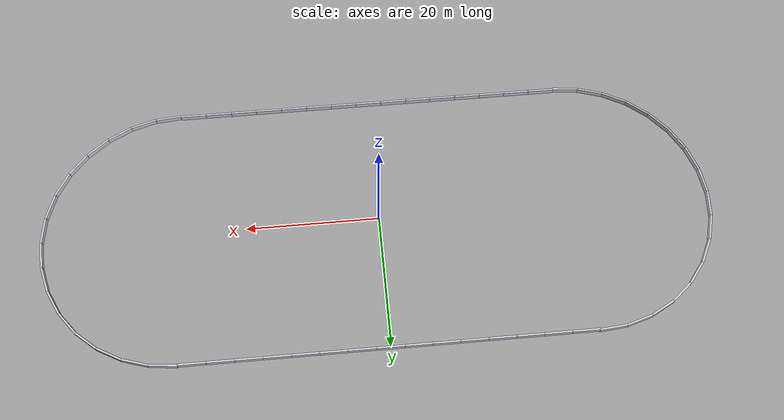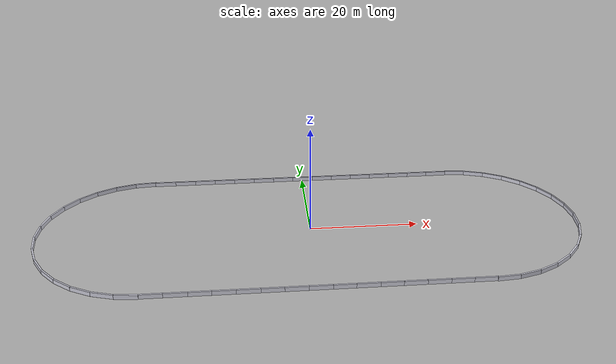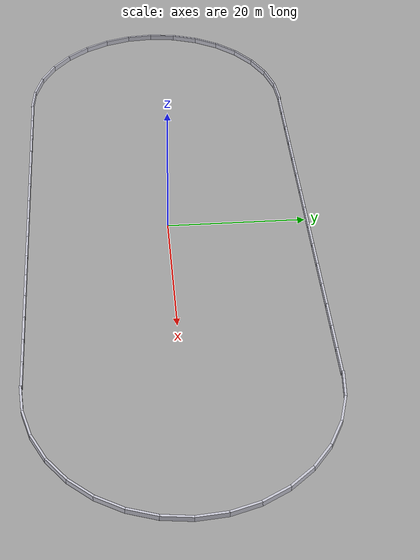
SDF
<sdf version="1.6">
 <world name="otoban">
  <model name="ic_bariyer">
   <static>1</static>
   <link name="link">
    <collision name="c0">
     <pose>-28.0062 -20.2500 0.4000 0 0 0.00000</pose>
     <geometry><box><size>4.0674 0.3000 0.8000</size></box></geometry>
    </collision>
    <collision name="c1">
     <pose>-24.0185 -20.2500 0.4000 0 0 0.00000</pose>
     <geometry><box><size>4.0674 0.3000 0.8000</size></box></geometry>
    </collision>
    <collision name="c2">
     <pose>-20.0309 -20.2500 0.4000 0 0 0.00000</pose>
     <geometry><box><size>4.0674 0.3000 0.8000</size></box></geometry>
    </collision>
    <collision name="c3">
     <pose>-16.0432 -20.2500 0.4000 0 0 0.00000</pose>
     <geometry><box><size>4.0674 0.3000 0.8000</size></box></geometry>
    </collision>
    <collision name="c4">
     <pose>-12.0556 -20.2500 0.4000 0 0 0.00000</pose>
     <geometry><box><size>4.0674 0.3000 0.8000</size></box></geometry>
    </collision>
    <collision name="c5">
     <pose>-8.0679 -20.2500 0.4000 0 0 0.00000</pose>
     <geometry><box><size>4.0674 0.3000 0.8000</size></box></geometry>
    </collision>
    <collision name="c6">
     <pose>-4.0803 -20.2500 0.4000 0 0 0.00000</pose>
     <geometry><box><size>4.0674 0.3000 0.8000</size></box></geometry>
    </collision>
    <collision name="c7">
     <pose>-0.0926 -20.2500 0.4000 0 0 0.00000</pose>
     <geometry><box><size>4.0674 0.3000 0.8000</size></box></geometry>
    </collision>
    <collision name="c8">
     <pose>3.8951 -20.2500 0.4000 0 0 0.00000</pose>
     <geometry><box><size>4.0674 0.3000 0.8000</size></box></geometry>
    </collision>
    <collision name="c9">
     <pose>7.8827 -20.2500 0.4000 0 0 0.00000</pose>
     <geometry><box><size>4.0674 0.3000 0.8000</size></box></geometry>
    </collision>
    <collision name="c10">
     <pose>11.8704 -20.2500 0.4000 0 0 0.00000</pose>
     <geometry><box><size>4.0674 0.3000 0.8000</size></box></geometry>
    </collision>
    <collision name="c11">
     <pose>15.8580 -20.2500 0.4000 0 0 0.00000</pose>
     <geometry><box><size>4.0674 0.3000 0.8000</size></box></geometry>
    </collision>
    <collision name="c12">
     <pose>19.8457 -20.2500 0.4000 0 0 0.00000</pose>
     <geometry><box><size>4.0674 0.3000 0.8000</size></box></geometry>
    </collision>
    <collision name="c13">
     <pose>23.8333 -20.2500 0.4000 0 0 0.00000</pose>
     <geometry><box><size>4.0674 0.3000 0.8000</size></box></geometry>
    </collision>
    <collision name="c14">
     <pose>27.8210 -20.2500 0.4000 0 0 0.00000</pose>
     <geometry><box><size>4.0674 0.3000 0.8000</size></box></geometry>
    </collision>
    <collision name="c15">
     <pose>31.8062 -20.1693 0.4000 0 0 0.08931</pose>
     <geometry><box><size>4.0674 0.3000 0.8000</size></box></geometry>
    </collision>
    <collision name="c16">
     <pose>35.7175 -19.4261 0.4000 0 0 0.28624</pose>
     <geometry><box><size>4.0674 0.3000 0.8000</size></box></geometry>
    </collision>
    <collision name="c17">
     <pose>39.4077 -17.9320 0.4000 0 0 0.48316</pose>
     <geometry><box><size>4.0674 0.3000 0.8000</size></box></geometry>
    </collision>
    <collision name="c18">
     <pose>42.7343 -15.7449 0.4000 0 0 0.68008</pose>
     <geometry><box><size>4.0674 0.3000 0.8000</size></box></geometry>
    </collision>
    <collision name="c19">
     <pose>45.5687 -12.9491 0.4000 0 0 0.87700</pose>
     <geometry><box><size>4.0674 0.3000 0.8000</size></box></geometry>
    </collision>
    <collision name="c20">
     <pose>47.8013 -9.6528 0.4000 0 0 1.07392</pose>
     <geometry><box><size>4.0674 0.3000 0.8000</size></box></geometry>
    </collision>
    <collision name="c21">
     <pose>49.3458 -5.9834 0.4000 0 0 1.27084</pose>
     <geometry><box><size>4.0674 0.3000 0.8000</size></box></geometry>
    </collision>
    <collision name="c22">
     <pose>50.1426 -2.0827 0.4000 0 0 1.46776</pose>
     <geometry><box><size>4.0674 0.3000 0.8000</size></box></geometry>
    </collision>
    <collision name="c23">
     <pose>50.1608 1.8984 0.4000 0 0 1.66468</pose>
     <geometry><box><size>4.0674 0.3000 0.8000</size></box></geometry>
    </collision>
    <collision name="c24">
     <pose>49.3997 5.8062 0.4000 0 0 1.86161</pose>
     <geometry><box><size>4.0674 0.3000 0.8000</size></box></geometry>
    </collision>
    <collision name="c25">
     <pose>47.8888 9.4896 0.4000 0 0 2.05853</pose>
     <geometry><box><size>4.0674 0.3000 0.8000</size></box></geometry>
    </collision>
    <collision name="c26">
     <pose>45.6865 12.8062 0.4000 0 0 2.25545</pose>
     <geometry><box><size>4.0674 0.3000 0.8000</size></box></geometry>
    </collision>
    <collision name="c27">
     <pose>42.8778 15.6277 0.4000 0 0 2.45237</pose>
     <geometry><box><size>4.0674 0.3000 0.8000</size></box></geometry>
    </collision>
    <collision name="c28">
     <pose>39.5713 17.8452 0.4000 0 0 2.64929</pose>
     <geometry><box><size>4.0674 0.3000 0.8000</size></box></geometry>
    </collision>
    <collision name="c29">
     <pose>35.8949 19.3730 0.4000 0 0 2.84621</pose>
     <geometry><box><size>4.0674 0.3000 0.8000</size></box></geometry>
    </collision>
    <collision name="c30">
     <pose>31.9906 20.1519 0.4000 0 0 3.04313</pose>
     <geometry><box><size>4.0674 0.3000 0.8000</size></box></geometry>
    </collision>
    <collision name="c31">
     <pose>28.0062 20.2500 0.4000 0 0 3.14159</pose>
     <geometry><box><size>4.0674 0.3000 0.8000</size></box></geometry>
    </collision>
    <collision name="c32">
     <pose>24.0185 20.2500 0.4000 0 0 3.14159</pose>
     <geometry><box><size>4.0674 0.3000 0.8000</size></box></geometry>
    </collision>
    <collision name="c33">
     <pose>20.0309 20.2500 0.4000 0 0 3.14159</pose>
     <geometry><box><size>4.0674 0.3000 0.8000</size></box></geometry>
    </collision>
    <collision name="c34">
     <pose>16.0432 20.2500 0.4000 0 0 3.14159</pose>
     <geometry><box><size>4.0674 0.3000 0.8000</size></box></geometry>
    </collision>
    <collision name="c35">
     <pose>12.0556 20.2500 0.4000 0 0 3.14159</pose>
     <geometry><box><size>4.0674 0.3000 0.8000</size></box></geometry>
    </collision>
    <collision name="c36">
     <pose>8.0679 20.2500 0.4000 0 0 3.14159</pose>
     <geometry><box><size>4.0674 0.3000 0.8000</size></box></geometry>
    </collision>
    <collision name="c37">
     <pose>4.0803 20.2500 0.4000 0 0 3.14159</pose>
     <geometry><box><size>4.0674 0.3000 0.8000</size></box></geometry>
    </collision>
    <collision name="c38">
     <pose>0.0926 20.2500 0.4000 0 0 3.14159</pose>
     <geometry><box><size>4.0674 0.3000 0.8000</size></box></geometry>
    </collision>
    <collision name="c39">
     <pose>-3.8951 20.2500 0.4000 0 0 3.14159</pose>
     <geometry><box><size>4.0674 0.3000 0.8000</size></box></geometry>
    </collision>
    <collision name="c40">
     <pose>-7.8827 20.2500 0.4000 0 0 3.14159</pose>
     <geometry><box><size>4.0674 0.3000 0.8000</size></box></geometry>
    </collision>
    <collision name="c41">
     <pose>-11.8704 20.2500 0.4000 0 0 3.14159</pose>
     <geometry><box><size>4.0674 0.3000 0.8000</size></box></geometry>
    </collision>
    <collision name="c42">
     <pose>-15.8580 20.2500 0.4000 0 0 3.14159</pose>
     <geometry><box><size>4.0674 0.3000 0.8000</size></box></geometry>
    </collision>
    <collision name="c43">
     <pose>-19.8457 20.2500 0.4000 0 0 3.14159</pose>
     <geometry><box><size>4.0674 0.3000 0.8000</size></box></geometry>
    </collision>
    <collision name="c44">
     <pose>-23.8333 20.2500 0.4000 0 0 3.14159</pose>
     <geometry><box><size>4.0674 0.3000 0.8000</size></box></geometry>
    </collision>
    <collision name="c45">
     <pose>-27.8210 20.2500 0.4000 0 0 3.14159</pose>
     <geometry><box><size>4.0674 0.3000 0.8000</size></box></geometry>
    </collision>
    <collision name="c46">
     <pose>-31.8062 20.1693 0.4000 0 0 3.23091</pose>
     <geometry><box><size>4.0674 0.3000 0.8000</size></box></geometry>
    </collision>
    <collision name="c47">
     <pose>-35.7175 19.4261 0.4000 0 0 3.42783</pose>
     <geometry><box><size>4.0674 0.3000 0.8000</size></box></geometry>
    </collision>
    <collision name="c48">
     <pose>-39.4077 17.9320 0.4000 0 0 3.62475</pose>
     <geometry><box><size>4.0674 0.3000 0.8000</size></box></geometry>
    </collision>
    <collision name="c49">
     <pose>-42.7343 15.7449 0.4000 0 0 3.82167</pose>
     <geometry><box><size>4.0674 0.3000 0.8000</size></box></geometry>
    </collision>
    <collision name="c50">
     <pose>-45.5687 12.9491 0.4000 0 0 4.01859</pose>
     <geometry><box><size>4.0674 0.3000 0.8000</size></box></geometry>
    </collision>
    <collision name="c51">
     <pose>-47.8013 9.6528 0.4000 0 0 4.21551</pose>
     <geometry><box><size>4.0674 0.3000 0.8000</size></box></geometry>
    </collision>
    <collision name="c52">
     <pose>-49.3458 5.9834 0.4000 0 0 4.41243</pose>
     <geometry><box><size>4.0674 0.3000 0.8000</size></box></geometry>
    </collision>
    <collision name="c53">
     <pose>-50.1426 2.0827 0.4000 0 0 4.60936</pose>
     <geometry><box><size>4.0674 0.3000 0.8000</size></box></geometry>
    </collision>
    <collision name="c54">
     <pose>-50.1608 -1.8984 0.4000 0 0 4.80628</pose>
     <geometry><box><size>4.0674 0.3000 0.8000</size></box></geometry>
    </collision>
    <collision name="c55">
     <pose>-49.3997 -5.8062 0.4000 0 0 5.00320</pose>
     <geometry><box><size>4.0674 0.3000 0.8000</size></box></geometry>
    </collision>
    <collision name="c56">
     <pose>-47.8888 -9.4896 0.4000 0 0 5.20012</pose>
     <geometry><box><size>4.0674 0.3000 0.8000</size></box></geometry>
    </collision>
    <collision name="c57">
     <pose>-45.6865 -12.8062 0.4000 0 0 5.39704</pose>
     <geometry><box><size>4.0674 0.3000 0.8000</size></box></geometry>
    </collision>
    <collision name="c58">
     <pose>-42.8778 -15.6277 0.4000 0 0 5.59396</pose>
     <geometry><box><size>4.0674 0.3000 0.8000</size></box></geometry>
    </collision>
    <collision name="c59">
     <pose>-39.5713 -17.8452 0.4000 0 0 5.79088</pose>
     <geometry><box><size>4.0674 0.3000 0.8000</size></box></geometry>
    </collision>
    <collision name="c60">
     <pose>-35.8949 -19.3730 0.4000 0 0 5.98780</pose>
     <geometry><box><size>4.0674 0.3000 0.8000</size></box></geometry>
    </collision>
    <collision name="c61">
     <pose>-31.9906 -20.1519 0.4000 0 0 6.18472</pose>
     <geometry><box><size>4.0674 0.3000 0.8000</size></box></geometry>
    </collision>
    <visual name="v0">
     <pose>-28.0062 -20.2500 0.4000 0 0 0.00000</pose>
     <cast_shadows>false</cast_shadows>
     <geometry><box><size>4.0674 0.3000 0.8000</size></box></geometry>
     <material><ambient>0.75 0.75 0.78 1</ambient><diffuse>0.8 0.8 0.85 1</diffuse></material>
    </visual>
    <visual name="v1">
     <pose>-24.0185 -20.2500 0.4000 0 0 0.00000</pose>
     <cast_shadows>false</cast_shadows>
     <geometry><box><size>4.0674 0.3000 0.8000</size></box></geometry>
     <material><ambient>0.75 0.75 0.78 1</ambient><diffuse>0.8 0.8 0.85 1</diffuse></material>
    </visual>
    <visual name="v2">
     <pose>-20.0309 -20.2500 0.4000 0 0 0.00000</pose>
     <cast_shadows>false</cast_shadows>
     <geometry><box><size>4.0674 0.3000 0.8000</size></box></geometry>
     <material><ambient>0.75 0.75 0.78 1</ambient><diffuse>0.8 0.8 0.85 1</diffuse></material>
    </visual>
    <visual name="v3">
     <pose>-16.0432 -20.2500 0.4000 0 0 0.00000</pose>
     <cast_shadows>false</cast_shadows>
     <geometry><box><size>4.0674 0.3000 0.8000</size></box></geometry>
     <material><ambient>0.75 0.75 0.78 1</ambient><diffuse>0.8 0.8 0.85 1</diffuse></material>
    </visual>
    <visual name="v4">
     <pose>-12.0556 -20.2500 0.4000 0 0 0.00000</pose>
     <cast_shadows>false</cast_shadows>
     <geometry><box><size>4.0674 0.3000 0.8000</size></box></geometry>
     <material><ambient>0.75 0.75 0.78 1</ambient><diffuse>0.8 0.8 0.85 1</diffuse></material>
    </visual>
    <visual name="v5">
     <pose>-8.0679 -20.2500 0.4000 0 0 0.00000</pose>
     <cast_shadows>false</cast_shadows>
     <geometry><box><size>4.0674 0.3000 0.8000</size></box></geometry>
     <material><ambient>0.75 0.75 0.78 1</ambient><diffuse>0.8 0.8 0.85 1</diffuse></material>
    </visual>
    <visual name="v6">
     <pose>-4.0803 -20.2500 0.4000 0 0 0.00000</pose>
     <cast_shadows>false</cast_shadows>
     <geometry><box><size>4.0674 0.3000 0.8000</size></box></geometry>
     <material><ambient>0.75 0.75 0.78 1</ambient><diffuse>0.8 0.8 0.85 1</diffuse></material>
    </visual>
    <visual name="v7">
     <pose>-0.0926 -20.2500 0.4000 0 0 0.00000</pose>
     <cast_shadows>false</cast_shadows>
     <geometry><box><size>4.0674 0.3000 0.8000</size></box></geometry>
     <material><ambient>0.75 0.75 0.78 1</ambient><diffuse>0.8 0.8 0.85 1</diffuse></material>
    </visual>
    <visual name="v8">
     <pose>3.8951 -20.2500 0.4000 0 0 0.00000</pose>
     <cast_shadows>false</cast_shadows>
     <geometry><box><size>4.0674 0.3000 0.8000</size></box></geometry>
     <material><ambient>0.75 0.75 0.78 1</ambient><diffuse>0.8 0.8 0.85 1</diffuse></material>
    </visual>
    <visual name="v9">
     <pose>7.8827 -20.2500 0.4000 0 0 0.00000</pose>
     <cast_shadows>false</cast_shadows>
     <geometry><box><size>4.0674 0.3000 0.8000</size></box></geometry>
     <material><ambient>0.75 0.75 0.78 1</ambient><diffuse>0.8 0.8 0.85 1</diffuse></material>
    </visual>
    <visual name="v10">
     <pose>11.8704 -20.2500 0.4000 0 0 0.00000</pose>
     <cast_shadows>false</cast_shadows>
     <geometry><box><size>4.0674 0.3000 0.8000</size></box></geometry>
     <material><ambient>0.75 0.75 0.78 1</ambient><diffuse>0.8 0.8 0.85 1</diffuse></material>
    </visual>
    <visual name="v11">
     <pose>15.8580 -20.2500 0.4000 0 0 0.00000</pose>
     <cast_shadows>false</cast_shadows>
     <geometry><box><size>4.0674 0.3000 0.8000</size></box></geometry>
     <material><ambient>0.75 0.75 0.78 1</ambient><diffuse>0.8 0.8 0.85 1</diffuse></material>
    </visual>
    <visual name="v12">
     <pose>19.8457 -20.2500 0.4000 0 0 0.00000</pose>
     <cast_shadows>false</cast_shadows>
     <geometry><box><size>4.0674 0.3000 0.8000</size></box></geometry>
     <material><ambient>0.75 0.75 0.78 1</ambient><diffuse>0.8 0.8 0.85 1</diffuse></material>
    </visual>
    <visual name="v13">
     <pose>23.8333 -20.2500 0.4000 0 0 0.00000</pose>
     <cast_shadows>false</cast_shadows>
     <geometry><box><size>4.0674 0.3000 0.8000</size></box></geometry>
     <material><ambient>0.75 0.75 0.78 1</ambient><diffuse>0.8 0.8 0.85 1</diffuse></material>
    </visual>
    <visual name="v14">
     <pose>27.8210 -20.2500 0.4000 0 0 0.00000</pose>
     <cast_shadows>false</cast_shadows>
     <geometry><box><size>4.0674 0.3000 0.8000</size></box></geometry>
     <material><ambient>0.75 0.75 0.78 1</ambient><diffuse>0.8 0.8 0.85 1</diffuse></material>
    </visual>
    <visual name="v15">
     <pose>31.8062 -20.1693 0.4000 0 0 0.08931</pose>
     <cast_shadows>false</cast_shadows>
     <geometry><box><size>4.0674 0.3000 0.8000</size></box></geometry>
     <material><ambient>0.75 0.75 0.78 1</ambient><diffuse>0.8 0.8 0.85 1</diffuse></material>
    </visual>
    <visual name="v16">
     <pose>35.7175 -19.4261 0.4000 0 0 0.28624</pose>
     <cast_shadows>false</cast_shadows>
     <geometry><box><size>4.0674 0.3000 0.8000</size></box></geometry>
     <material><ambient>0.75 0.75 0.78 1</ambient><diffuse>0.8 0.8 0.85 1</diffuse></material>
    </visual>
    <visual name="v17">
     <pose>39.4077 -17.9320 0.4000 0 0 0.48316</pose>
     <cast_shadows>false</cast_shadows>
     <geometry><box><size>4.0674 0.3000 0.8000</size></box></geometry>
     <material><ambient>0.75 0.75 0.78 1</ambient><diffuse>0.8 0.8 0.85 1</diffuse></material>
    </visual>
    <visual name="v18">
     <pose>42.7343 -15.7449 0.4000 0 0 0.68008</pose>
     <cast_shadows>false</cast_shadows>
     <geometry><box><size>4.0674 0.3000 0.8000</size></box></geometry>
     <material><ambient>0.75 0.75 0.78 1</ambient><diffuse>0.8 0.8 0.85 1</diffuse></material>
    </visual>
    <visual name="v19">
     <pose>45.5687 -12.9491 0.4000 0 0 0.87700</pose>
     <cast_shadows>false</cast_shadows>
     <geometry><box><size>4.0674 0.3000 0.8000</size></box></geometry>
     <material><ambient>0.75 0.75 0.78 1</ambient><diffuse>0.8 0.8 0.85 1</diffuse></material>
    </visual>
    <visual name="v20">
     <pose>47.8013 -9.6528 0.4000 0 0 1.07392</pose>
     <cast_shadows>false</cast_shadows>
     <geometry><box><size>4.0674 0.3000 0.8000</size></box></geometry>
     <material><ambient>0.75 0.75 0.78 1</ambient><diffuse>0.8 0.8 0.85 1</diffuse></material>
    </visual>
    <visual name="v21">
     <pose>49.3458 -5.9834 0.4000 0 0 1.27084</pose>
     <cast_shadows>false</cast_shadows>
     <geometry><box><size>4.0674 0.3000 0.8000</size></box></geometry>
     <material><ambient>0.75 0.75 0.78 1</ambient><diffuse>0.8 0.8 0.85 1</diffuse></material>
    </visual>
    <visual name="v22">
     <pose>50.1426 -2.0827 0.4000 0 0 1.46776</pose>
     <cast_shadows>false</cast_shadows>
     <geometry><box><size>4.0674 0.3000 0.8000</size></box></geometry>
     <material><ambient>0.75 0.75 0.78 1</ambient><diffuse>0.8 0.8 0.85 1</diffuse></material>
    </visual>
    <visual name="v23">
     <pose>50.1608 1.8984 0.4000 0 0 1.66468</pose>
     <cast_shadows>false</cast_shadows>
     <geometry><box><size>4.0674 0.3000 0.8000</size></box></geometry>
     <material><ambient>0.75 0.75 0.78 1</ambient><diffuse>0.8 0.8 0.85 1</diffuse></material>
    </visual>
    <visual name="v24">
     <pose>49.3997 5.8062 0.4000 0 0 1.86161</pose>
     <cast_shadows>false</cast_shadows>
     <geometry><box><size>4.0674 0.3000 0.8000</size></box></geometry>
     <material><ambient>0.75 0.75 0.78 1</ambient><diffuse>0.8 0.8 0.85 1</diffuse></material>
    </visual>
    <visual name="v25">
     <pose>47.8888 9.4896 0.4000 0 0 2.05853</pose>
     <cast_shadows>false</cast_shadows>
     <geometry><box><size>4.0674 0.3000 0.8000</size></box></geometry>
     <material><ambient>0.75 0.75 0.78 1</ambient><diffuse>0.8 0.8 0.85 1</diffuse></material>
    </visual>
    <visual name="v26">
     <pose>45.6865 12.8062 0.4000 0 0 2.25545</pose>
     <cast_shadows>false</cast_shadows>
     <geometry><box><size>4.0674 0.3000 0.8000</size></box></geometry>
     <material><ambient>0.75 0.75 0.78 1</ambient><diffuse>0.8 0.8 0.85 1</diffuse></material>
    </visual>
    <visual name="v27">
     <pose>42.8778 15.6277 0.4000 0 0 2.45237</pose>
     <cast_shadows>false</cast_shadows>
     <geometry><box><size>4.0674 0.3000 0.8000</size></box></geometry>
     <material><ambient>0.75 0.75 0.78 1</ambient><diffuse>0.8 0.8 0.85 1</diffuse></material>
    </visual>
    <visual name="v28">
     <pose>39.5713 17.8452 0.4000 0 0 2.64929</pose>
     <cast_shadows>false</cast_shadows>
     <geometry><box><size>4.0674 0.3000 0.8000</size></box></geometry>
     <material><ambient>0.75 0.75 0.78 1</ambient><diffuse>0.8 0.8 0.85 1</diffuse></material>
    </visual>
    <visual name="v29">
     <pose>35.8949 19.3730 0.4000 0 0 2.84621</pose>
     <cast_shadows>false</cast_shadows>
     <geometry><box><size>4.0674 0.3000 0.8000</size></box></geometry>
     <material><ambient>0.75 0.75 0.78 1</ambient><diffuse>0.8 0.8 0.85 1</diffuse></material>
    </visual>
    <visual name="v30">
     <pose>31.9906 20.1519 0.4000 0 0 3.04313</pose>
     <cast_shadows>false</cast_shadows>
     <geometry><box><size>4.0674 0.3000 0.8000</size></box></geometry>
     <material><ambient>0.75 0.75 0.78 1</ambient><diffuse>0.8 0.8 0.85 1</diffuse></material>
    </visual>
    <visual name="v31">
     <pose>28.0062 20.2500 0.4000 0 0 3.14159</pose>
     <cast_shadows>false</cast_shadows>
     <geometry><box><size>4.0674 0.3000 0.8000</size></box></geometry>
     <material><ambient>0.75 0.75 0.78 1</ambient><diffuse>0.8 0.8 0.85 1</diffuse></material>
    </visual>
    <visual name="v32">
     <pose>24.0185 20.2500 0.4000 0 0 3.14159</pose>
     <cast_shadows>false</cast_shadows>
     <geometry><box><size>4.0674 0.3000 0.8000</size></box></geometry>
     <material><ambient>0.75 0.75 0.78 1</ambient><diffuse>0.8 0.8 0.85 1</diffuse></material>
    </visual>
    <visual name="v33">
     <pose>20.0309 20.2500 0.4000 0 0 3.14159</pose>
     <cast_shadows>false</cast_shadows>
     <geometry><box><size>4.0674 0.3000 0.8000</size></box></geometry>
     <material><ambient>0.75 0.75 0.78 1</ambient><diffuse>0.8 0.8 0.85 1</diffuse></material>
    </visual>
    <visual name="v34">
     <pose>16.0432 20.2500 0.4000 0 0 3.14159</pose>
     <cast_shadows>false</cast_shadows>
     <geometry><box><size>4.0674 0.3000 0.8000</size></box></geometry>
     <material><ambient>0.75 0.75 0.78 1</ambient><diffuse>0.8 0.8 0.85 1</diffuse></material>
    </visual>
    <visual name="v35">
     <pose>12.0556 20.2500 0.4000 0 0 3.14159</pose>
     <cast_shadows>false</cast_shadows>
     <geometry><box><size>4.0674 0.3000 0.8000</size></box></geometry>
     <material><ambient>0.75 0.75 0.78 1</ambient><diffuse>0.8 0.8 0.85 1</diffuse></material>
    </visual>
    <visual name="v36">
     <pose>8.0679 20.2500 0.4000 0 0 3.14159</pose>
     <cast_shadows>false</cast_shadows>
     <geometry><box><size>4.0674 0.3000 0.8000</size></box></geometry>
     <material><ambient>0.75 0.75 0.78 1</ambient><diffuse>0.8 0.8 0.85 1</diffuse></material>
    </visual>
    <visual name="v37">
     <pose>4.0803 20.2500 0.4000 0 0 3.14159</pose>
     <cast_shadows>false</cast_shadows>
     <geometry><box><size>4.0674 0.3000 0.8000</size></box></geometry>
     <material><ambient>0.75 0.75 0.78 1</ambient><diffuse>0.8 0.8 0.85 1</diffuse></material>
    </visual>
    <visual name="v38">
     <pose>0.0926 20.2500 0.4000 0 0 3.14159</pose>
     <cast_shadows>false</cast_shadows>
     <geometry><box><size>4.0674 0.3000 0.8000</size></box></geometry>
     <material><ambient>0.75 0.75 0.78 1</ambient><diffuse>0.8 0.8 0.85 1</diffuse></material>
    </visual>
    <visual name="v39">
     <pose>-3.8951 20.2500 0.4000 0 0 3.14159</pose>
     <cast_shadows>false</cast_shadows>
     <geometry><box><size>4.0674 0.3000 0.8000</size></box></geometry>
     <material><ambient>0.75 0.75 0.78 1</ambient><diffuse>0.8 0.8 0.85 1</diffuse></material>
    </visual>
    <visual name="v40">
     <pose>-7.8827 20.2500 0.4000 0 0 3.14159</pose>
     <cast_shadows>false</cast_shadows>
     <geometry><box><size>4.0674 0.3000 0.8000</size></box></geometry>
     <material><ambient>0.75 0.75 0.78 1</ambient><diffuse>0.8 0.8 0.85 1</diffuse></material>
    </visual>
    <visual name="v41">
     <pose>-11.8704 20.2500 0.4000 0 0 3.14159</pose>
     <cast_shadows>false</cast_shadows>
     <geometry><box><size>4.0674 0.3000 0.8000</size></box></geometry>
     <material><ambient>0.75 0.75 0.78 1</ambient><diffuse>0.8 0.8 0.85 1</diffuse></material>
    </visual>
    <visual name="v42">
     <pose>-15.8580 20.2500 0.4000 0 0 3.14159</pose>
     <cast_shadows>false</cast_shadows>
     <geometry><box><size>4.0674 0.3000 0.8000</size></box></geometry>
     <material><ambient>0.75 0.75 0.78 1</ambient><diffuse>0.8 0.8 0.85 1</diffuse></material>
    </visual>
    <visual name="v43">
     <pose>-19.8457 20.2500 0.4000 0 0 3.14159</pose>
     <cast_shadows>false</cast_shadows>
     <geometry><box><size>4.0674 0.3000 0.8000</size></box></geometry>
     <material><ambient>0.75 0.75 0.78 1</ambient><diffuse>0.8 0.8 0.85 1</diffuse></material>
    </visual>
    <visual name="v44">
     <pose>-23.8333 20.2500 0.4000 0 0 3.14159</pose>
     <cast_shadows>false</cast_shadows>
     <geometry><box><size>4.0674 0.3000 0.8000</size></box></geometry>
     <material><ambient>0.75 0.75 0.78 1</ambient><diffuse>0.8 0.8 0.85 1</diffuse></material>
    </visual>
    <visual name="v45">
     <pose>-27.8210 20.2500 0.4000 0 0 3.14159</pose>
     <cast_shadows>false</cast_shadows>
     <geometry><box><size>4.0674 0.3000 0.8000</size></box></geometry>
     <material><ambient>0.75 0.75 0.78 1</ambient><diffuse>0.8 0.8 0.85 1</diffuse></material>
    </visual>
    <visual name="v46">
     <pose>-31.8062 20.1693 0.4000 0 0 3.23091</pose>
     <cast_shadows>false</cast_shadows>
     <geometry><box><size>4.0674 0.3000 0.8000</size></box></geometry>
     <material><ambient>0.75 0.75 0.78 1</ambient><diffuse>0.8 0.8 0.85 1</diffuse></material>
    </visual>
    <visual name="v47">
     <pose>-35.7175 19.4261 0.4000 0 0 3.42783</pose>
     <cast_shadows>false</cast_shadows>
     <geometry><box><size>4.0674 0.3000 0.8000</size></box></geometry>
     <material><ambient>0.75 0.75 0.78 1</ambient><diffuse>0.8 0.8 0.85 1</diffuse></material>
    </visual>
    <visual name="v48">
     <pose>-39.4077 17.9320 0.4000 0 0 3.62475</pose>
     <cast_shadows>false</cast_shadows>
     <geometry><box><size>4.0674 0.3000 0.8000</size></box></geometry>
     <material><ambient>0.75 0.75 0.78 1</ambient><diffuse>0.8 0.8 0.85 1</diffuse></material>
    </visual>
    <visual name="v49">
     <pose>-42.7343 15.7449 0.4000 0 0 3.82167</pose>
     <cast_shadows>false</cast_shadows>
     <geometry><box><size>4.0674 0.3000 0.8000</size></box></geometry>
     <material><ambient>0.75 0.75 0.78 1</ambient><diffuse>0.8 0.8 0.85 1</diffuse></material>
    </visual>
    <visual name="v50">
     <pose>-45.5687 12.9491 0.4000 0 0 4.01859</pose>
     <cast_shadows>false</cast_shadows>
     <geometry><box><size>4.0674 0.3000 0.8000</size></box></geometry>
     <material><ambient>0.75 0.75 0.78 1</ambient><diffuse>0.8 0.8 0.85 1</diffuse></material>
    </visual>
    <visual name="v51">
     <pose>-47.8013 9.6528 0.4000 0 0 4.21551</pose>
     <cast_shadows>false</cast_shadows>
     <geometry><box><size>4.0674 0.3000 0.8000</size></box></geometry>
     <material><ambient>0.75 0.75 0.78 1</ambient><diffuse>0.8 0.8 0.85 1</diffuse></material>
    </visual>
    <visual name="v52">
     <pose>-49.3458 5.9834 0.4000 0 0 4.41243</pose>
     <cast_shadows>false</cast_shadows>
     <geometry><box><size>4.0674 0.3000 0.8000</size></box></geometry>
     <material><ambient>0.75 0.75 0.78 1</ambient><diffuse>0.8 0.8 0.85 1</diffuse></material>
    </visual>
    <visual name="v53">
     <pose>-50.1426 2.0827 0.4000 0 0 4.60936</pose>
     <cast_shadows>false</cast_shadows>
     <geometry><box><size>4.0674 0.3000 0.8000</size></box></geometry>
     <material><ambient>0.75 0.75 0.78 1</ambient><diffuse>0.8 0.8 0.85 1</diffuse></material>
    </visual>
    <visual name="v54">
     <pose>-50.1608 -1.8984 0.4000 0 0 4.80628</pose>
     <cast_shadows>false</cast_shadows>
     <geometry><box><size>4.0674 0.3000 0.8000</size></box></geometry>
     <material><ambient>0.75 0.75 0.78 1</ambient><diffuse>0.8 0.8 0.85 1</diffuse></material>
    </visual>
    <visual name="v55">
     <pose>-49.3997 -5.8062 0.4000 0 0 5.00320</pose>
     <cast_shadows>false</cast_shadows>
     <geometry><box><size>4.0674 0.3000 0.8000</size></box></geometry>
     <material><ambient>0.75 0.75 0.78 1</ambient><diffuse>0.8 0.8 0.85 1</diffuse></material>
    </visual>
    <visual name="v56">
     <pose>-47.8888 -9.4896 0.4000 0 0 5.20012</pose>
     <cast_shadows>false</cast_shadows>
     <geometry><box><size>4.0674 0.3000 0.8000</size></box></geometry>
     <material><ambient>0.75 0.75 0.78 1</ambient><diffuse>0.8 0.8 0.85 1</diffuse></material>
    </visual>
    <visual name="v57">
     <pose>-45.6865 -12.8062 0.4000 0 0 5.39704</pose>
     <cast_shadows>false</cast_shadows>
     <geometry><box><size>4.0674 0.3000 0.8000</size></box></geometry>
     <material><ambient>0.75 0.75 0.78 1</ambient><diffuse>0.8 0.8 0.85 1</diffuse></material>
    </visual>
    <visual name="v58">
     <pose>-42.8778 -15.6277 0.4000 0 0 5.59396</pose>
     <cast_shadows>false</cast_shadows>
     <geometry><box><size>4.0674 0.3000 0.8000</size></box></geometry>
     <material><ambient>0.75 0.75 0.78 1</ambient><diffuse>0.8 0.8 0.85 1</diffuse></material>
    </visual>
    <visual name="v59">
     <pose>-39.5713 -17.8452 0.4000 0 0 5.79088</pose>
     <cast_shadows>false</cast_shadows>
     <geometry><box><size>4.0674 0.3000 0.8000</size></box></geometry>
     <material><ambient>0.75 0.75 0.78 1</ambient><diffuse>0.8 0.8 0.85 1</diffuse></material>
    </visual>
    <visual name="v60">
     <pose>-35.8949 -19.3730 0.4000 0 0 5.98780</pose>
     <cast_shadows>false</cast_shadows>
     <geometry><box><size>4.0674 0.3000 0.8000</size></box></geometry>
     <material><ambient>0.75 0.75 0.78 1</ambient><diffuse>0.8 0.8 0.85 1</diffuse></material>
    </visual>
    <visual name="v61">
     <pose>-31.9906 -20.1519 0.4000 0 0 6.18472</pose>
     <cast_shadows>false</cast_shadows>
     <geometry><box><size>4.0674 0.3000 0.8000</size></box></geometry>
     <material><ambient>0.75 0.75 0.78 1</ambient><diffuse>0.8 0.8 0.85 1</diffuse></material>
    </visual>
   </link>
  </model>
 </world>
</sdf>
